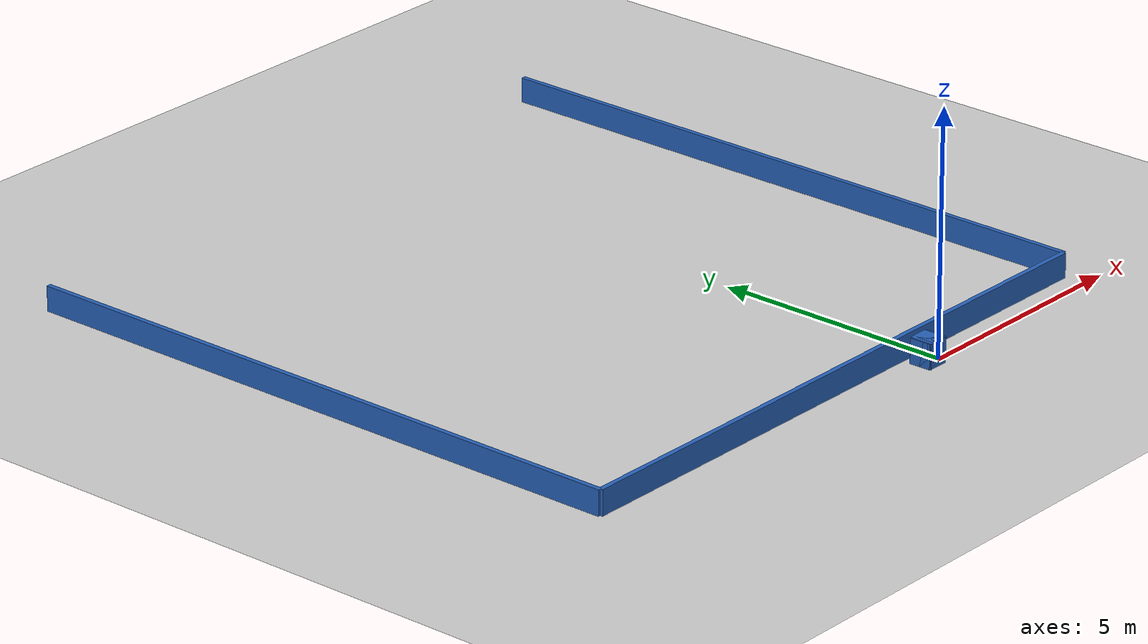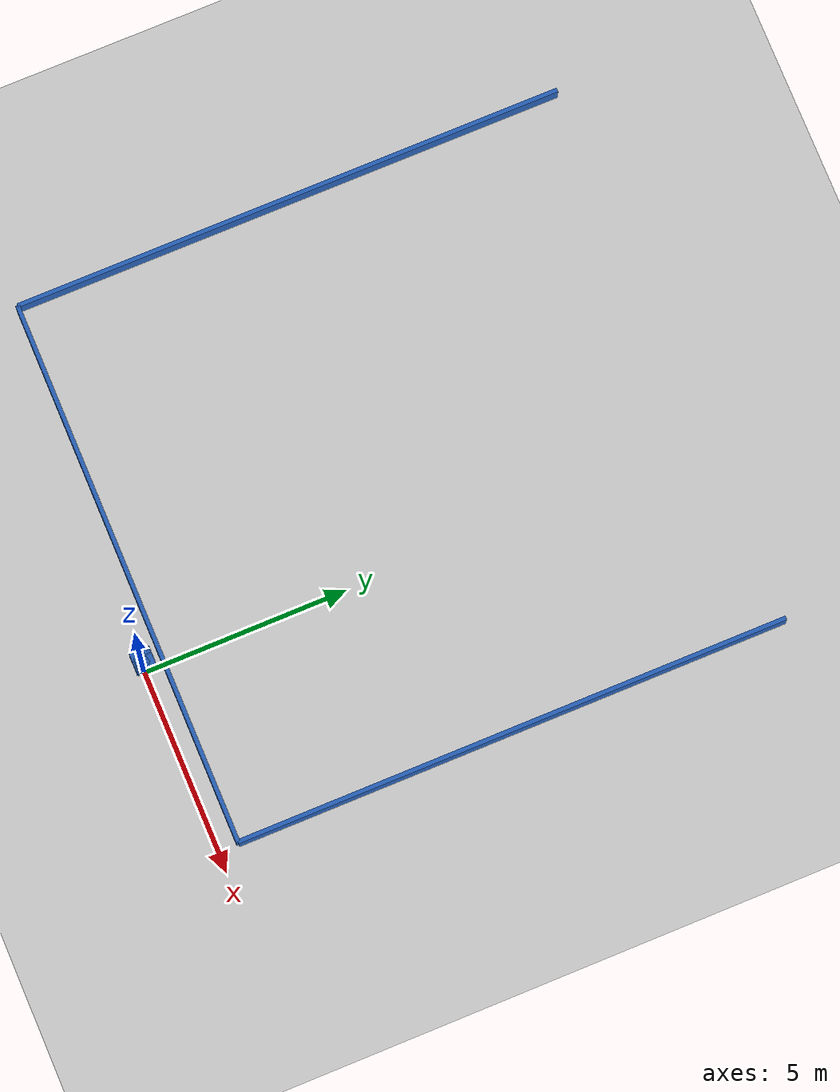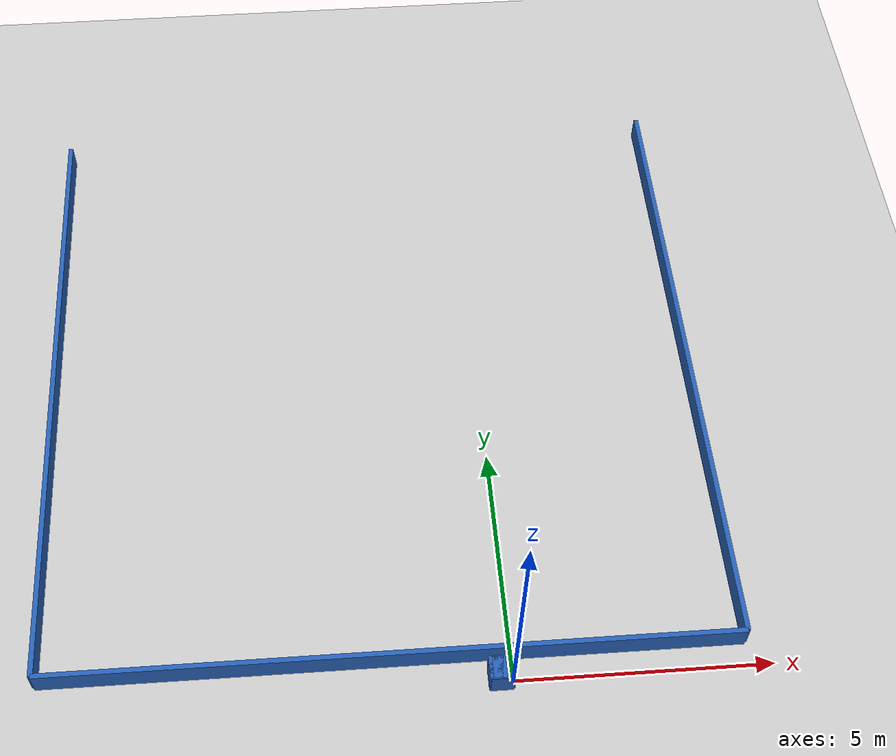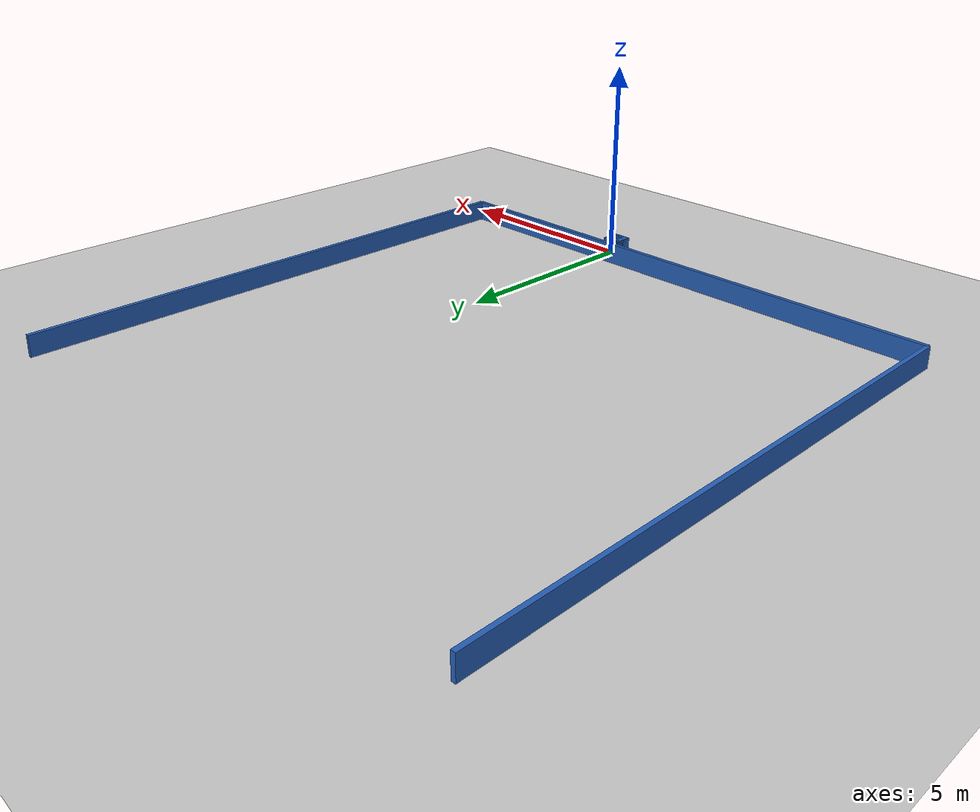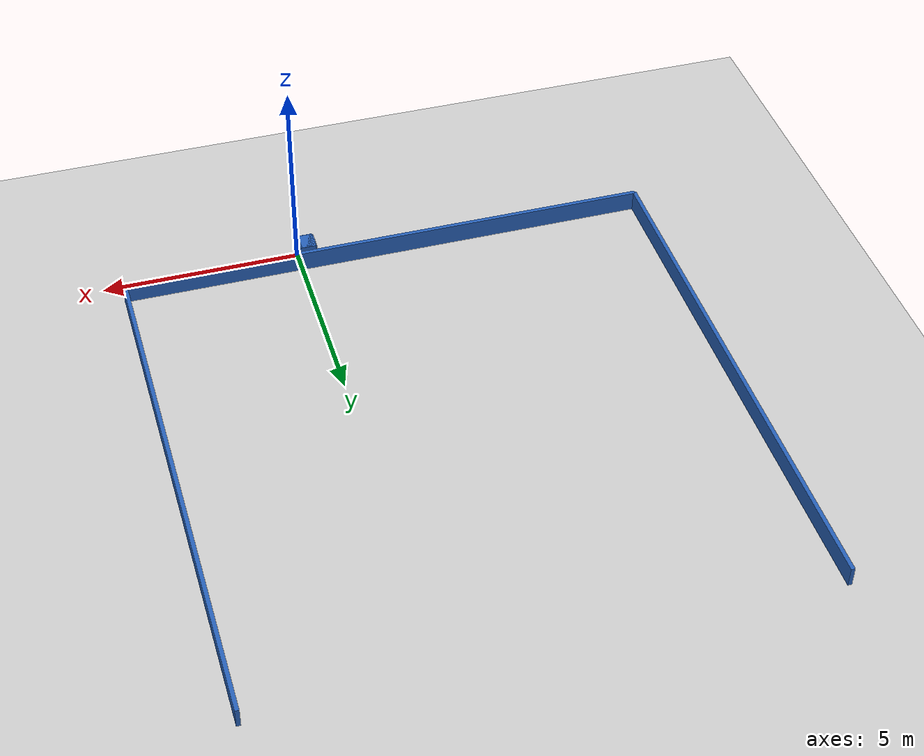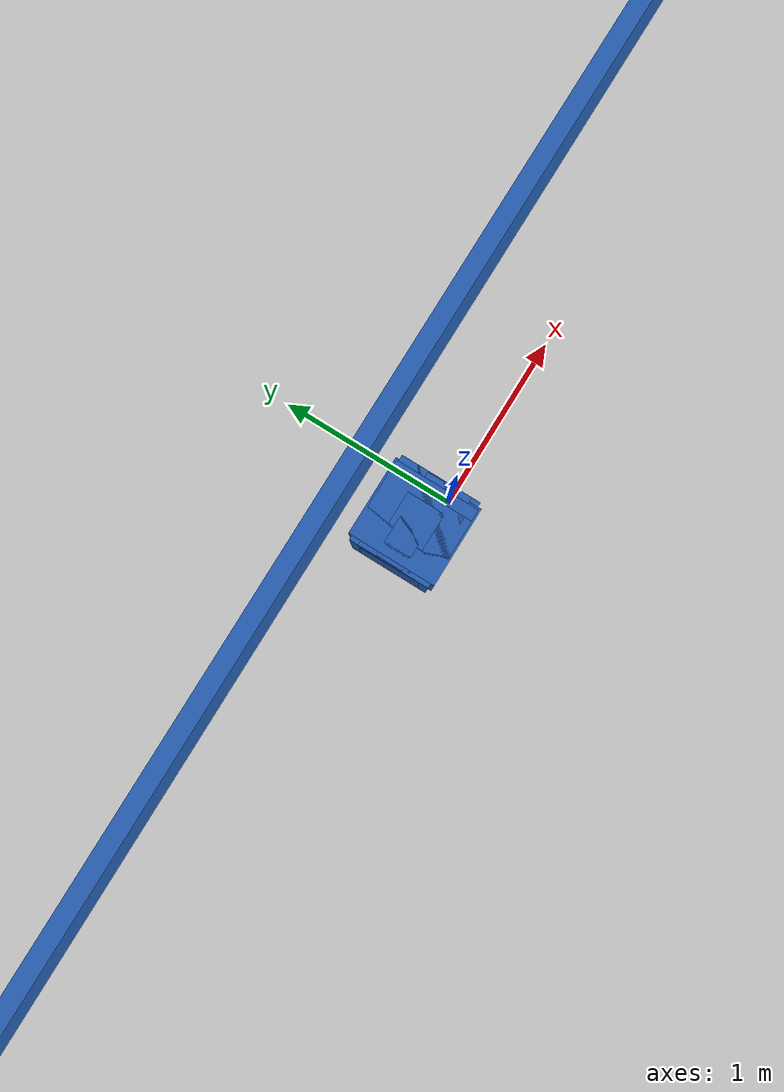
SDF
<?xml version="1.0" ?>
    <sdf version="1.5">
      <world name="default">
        <!-- A global light source -->
        <include>
          <uri>model://sun</uri>
        </include>
        <!-- A ground plane -->
        <include>
          <uri>model://ground_plane</uri>
        </include>

    <model name='libopen_space_final_T2B_51_1'>
      <static>1</static>
      <pose frame=''>-0.225000 0.075000 0.000000 0.000000 0.000000 0.000000</pose>
      <link name='link'>
        <inertial>
          <mass>1</mass>
          <inertia>
            <ixx>0.145833</ixx>
            <ixy>0</ixy>
            <ixz>0</ixz>
            <iyy>0.145833</iyy>
            <iyz>0</iyz>
            <izz>0.125</izz>
          </inertia>
        </inertial>
        <collision name='collision'>
          <geometry>
            <box>
              <size>0.49 0.35 1</size>
            </box>
          </geometry>
          <max_contacts>10</max_contacts>
          <surface>
            <contact>
              <ode/>
            </contact>
            <bounce/>
            <friction>
              <torsional>
                <ode/>
              </torsional>
              <ode/>
            </friction>
          </surface>
        </collision>
        <visual name='visual'>
          <geometry>
            <box>
              <size>0.49 0.35 1</size>
            </box>
          </geometry>
	    <material>
              <ambient>0.152000 0.379000 0.720000 1</ambient>
	      <diffuse>0.152000 0.379000 0.720000 1</diffuse>
          </material>
          <material>
            <script>
              <name>Gazebo/Grey</name>
              <uri>file://media/materials/scripts/gazebo.material</uri>
            </script>
          </material>
        </visual>
        <self_collide>0</self_collide>
        <kinematic>0</kinematic>
        <gravity>1</gravity>
      </link>
      <plugin name='libopen_space_final_T2B_51_1' filename='libopen_space_final_T2B_51_1.so'/>
    </model>

    <model name='libopen_space_final_T2B_139_84'>
      <static>1</static>
      <pose frame=''>-0.225000 0.075000 0.000000 0.000000 0.000000 0.000000</pose>
      <link name='link'>
        <inertial>
          <mass>1</mass>
          <inertia>
            <ixx>0.145833</ixx>
            <ixy>0</ixy>
            <ixz>0</ixz>
            <iyy>0.145833</iyy>
            <iyz>0</iyz>
            <izz>0.125</izz>
          </inertia>
        </inertial>
        <collision name='collision'>
          <geometry>
            <box>
              <size>0.16 0.44 1</size>
            </box>
          </geometry>
          <max_contacts>10</max_contacts>
          <surface>
            <contact>
              <ode/>
            </contact>
            <bounce/>
            <friction>
              <torsional>
                <ode/>
              </torsional>
              <ode/>
            </friction>
          </surface>
        </collision>
        <visual name='visual'>
          <geometry>
            <box>
              <size>0.16 0.44 1</size>
            </box>
          </geometry>
	    <material>
              <ambient>0.152000 0.379000 0.720000 1</ambient>
	      <diffuse>0.152000 0.379000 0.720000 1</diffuse>
          </material>
          <material>
            <script>
              <name>Gazebo/Grey</name>
              <uri>file://media/materials/scripts/gazebo.material</uri>
            </script>
          </material>
        </visual>
        <self_collide>0</self_collide>
        <kinematic>0</kinematic>
        <gravity>1</gravity>
      </link>
      <plugin name='libopen_space_final_T2B_139_84' filename='libopen_space_final_T2B_139_84.so'/>
    </model>

    <model name='libopen_space_final_T2B_73_9'>
      <static>1</static>
      <pose frame=''>-0.225000 0.075000 0.000000 0.000000 0.000000 0.000000</pose>
      <link name='link'>
        <inertial>
          <mass>1</mass>
          <inertia>
            <ixx>0.145833</ixx>
            <ixy>0</ixy>
            <ixz>0</ixz>
            <iyy>0.145833</iyy>
            <iyz>0</iyz>
            <izz>0.125</izz>
          </inertia>
        </inertial>
        <collision name='collision'>
          <geometry>
            <box>
              <size>0.21 0.21 1</size>
            </box>
          </geometry>
          <max_contacts>10</max_contacts>
          <surface>
            <contact>
              <ode/>
            </contact>
            <bounce/>
            <friction>
              <torsional>
                <ode/>
              </torsional>
              <ode/>
            </friction>
          </surface>
        </collision>
        <visual name='visual'>
          <geometry>
            <box>
              <size>0.21 0.21 1</size>
            </box>
          </geometry>
	    <material>
              <ambient>0.152000 0.379000 0.720000 1</ambient>
	      <diffuse>0.152000 0.379000 0.720000 1</diffuse>
          </material>
          <material>
            <script>
              <name>Gazebo/Grey</name>
              <uri>file://media/materials/scripts/gazebo.material</uri>
            </script>
          </material>
        </visual>
        <self_collide>0</self_collide>
        <kinematic>0</kinematic>
        <gravity>1</gravity>
      </link>
      <plugin name='libopen_space_final_T2B_73_9' filename='libopen_space_final_T2B_73_9.so'/>
    </model>

    <model name='libopen_space_final_T2B_120_90'>
      <static>1</static>
      <pose frame=''>-0.225000 0.075000 0.000000 0.000000 0.000000 0.000000</pose>
      <link name='link'>
        <inertial>
          <mass>1</mass>
          <inertia>
            <ixx>0.145833</ixx>
            <ixy>0</ixy>
            <ixz>0</ixz>
            <iyy>0.145833</iyy>
            <iyz>0</iyz>
            <izz>0.125</izz>
          </inertia>
        </inertial>
        <collision name='collision'>
          <geometry>
            <box>
              <size>0.19 0.19 1</size>
            </box>
          </geometry>
          <max_contacts>10</max_contacts>
          <surface>
            <contact>
              <ode/>
            </contact>
            <bounce/>
            <friction>
              <torsional>
                <ode/>
              </torsional>
              <ode/>
            </friction>
          </surface>
        </collision>
        <visual name='visual'>
          <geometry>
            <box>
              <size>0.19 0.19 1</size>
            </box>
          </geometry>
	    <material>
              <ambient>0.152000 0.379000 0.720000 1</ambient>
	      <diffuse>0.152000 0.379000 0.720000 1</diffuse>
          </material>
          <material>
            <script>
              <name>Gazebo/Grey</name>
              <uri>file://media/materials/scripts/gazebo.material</uri>
            </script>
          </material>
        </visual>
        <self_collide>0</self_collide>
        <kinematic>0</kinematic>
        <gravity>1</gravity>
      </link>
      <plugin name='libopen_space_final_T2B_120_90' filename='libopen_space_final_T2B_120_90.so'/>
    </model>

    <model name='libopen_space_final_T2B_111_12'>
      <static>1</static>
      <pose frame=''>-0.225000 0.075000 0.000000 0.000000 0.000000 0.000000</pose>
      <link name='link'>
        <inertial>
          <mass>1</mass>
          <inertia>
            <ixx>0.145833</ixx>
            <ixy>0</ixy>
            <ixz>0</ixz>
            <iyy>0.145833</iyy>
            <iyz>0</iyz>
            <izz>0.125</izz>
          </inertia>
        </inertial>
        <collision name='collision'>
          <geometry>
            <box>
              <size>0.42 0.47 1</size>
            </box>
          </geometry>
          <max_contacts>10</max_contacts>
          <surface>
            <contact>
              <ode/>
            </contact>
            <bounce/>
            <friction>
              <torsional>
                <ode/>
              </torsional>
              <ode/>
            </friction>
          </surface>
        </collision>
        <visual name='visual'>
          <geometry>
            <box>
              <size>0.42 0.47 1</size>
            </box>
          </geometry>
	    <material>
              <ambient>0.152000 0.379000 0.720000 1</ambient>
	      <diffuse>0.152000 0.379000 0.720000 1</diffuse>
          </material>
          <material>
            <script>
              <name>Gazebo/Grey</name>
              <uri>file://media/materials/scripts/gazebo.material</uri>
            </script>
          </material>
        </visual>
        <self_collide>0</self_collide>
        <kinematic>0</kinematic>
        <gravity>1</gravity>
      </link>
      <plugin name='libopen_space_final_T2B_111_12' filename='libopen_space_final_T2B_111_12.so'/>
    </model>

    <model name='libopen_space_final_T2B_126_78'>
      <static>1</static>
      <pose frame=''>-0.225000 0.075000 0.000000 0.000000 0.000000 0.000000</pose>
      <link name='link'>
        <inertial>
          <mass>1</mass>
          <inertia>
            <ixx>0.145833</ixx>
            <ixy>0</ixy>
            <ixz>0</ixz>
            <iyy>0.145833</iyy>
            <iyz>0</iyz>
            <izz>0.125</izz>
          </inertia>
        </inertial>
        <collision name='collision'>
          <geometry>
            <box>
              <size>0.49 0.45 1</size>
            </box>
          </geometry>
          <max_contacts>10</max_contacts>
          <surface>
            <contact>
              <ode/>
            </contact>
            <bounce/>
            <friction>
              <torsional>
                <ode/>
              </torsional>
              <ode/>
            </friction>
          </surface>
        </collision>
        <visual name='visual'>
          <geometry>
            <box>
              <size>0.49 0.45 1</size>
            </box>
          </geometry>
	    <material>
              <ambient>0.152000 0.379000 0.720000 1</ambient>
	      <diffuse>0.152000 0.379000 0.720000 1</diffuse>
          </material>
          <material>
            <script>
              <name>Gazebo/Grey</name>
              <uri>file://media/materials/scripts/gazebo.material</uri>
            </script>
          </material>
        </visual>
        <self_collide>0</self_collide>
        <kinematic>0</kinematic>
        <gravity>1</gravity>
      </link>
      <plugin name='libopen_space_final_T2B_126_78' filename='libopen_space_final_T2B_126_78.so'/>
    </model>

    <model name='libopen_space_final_T2B_105_8'>
      <static>1</static>
      <pose frame=''>-0.225000 0.075000 0.000000 0.000000 0.000000 0.000000</pose>
      <link name='link'>
        <inertial>
          <mass>1</mass>
          <inertia>
            <ixx>0.145833</ixx>
            <ixy>0</ixy>
            <ixz>0</ixz>
            <iyy>0.145833</iyy>
            <iyz>0</iyz>
            <izz>0.125</izz>
          </inertia>
        </inertial>
        <collision name='collision'>
          <geometry>
            <box>
              <size>0.48 0.15 1</size>
            </box>
          </geometry>
          <max_contacts>10</max_contacts>
          <surface>
            <contact>
              <ode/>
            </contact>
            <bounce/>
            <friction>
              <torsional>
                <ode/>
              </torsional>
              <ode/>
            </friction>
          </surface>
        </collision>
        <visual name='visual'>
          <geometry>
            <box>
              <size>0.48 0.15 1</size>
            </box>
          </geometry>
	    <material>
              <ambient>0.152000 0.379000 0.720000 1</ambient>
	      <diffuse>0.152000 0.379000 0.720000 1</diffuse>
          </material>
          <material>
            <script>
              <name>Gazebo/Grey</name>
              <uri>file://media/materials/scripts/gazebo.material</uri>
            </script>
          </material>
        </visual>
        <self_collide>0</self_collide>
        <kinematic>0</kinematic>
        <gravity>1</gravity>
      </link>
      <plugin name='libopen_space_final_T2B_105_8' filename='libopen_space_final_T2B_105_8.so'/>
    </model>

    <model name='libopen_space_final_T2B_85_62'>
      <static>1</static>
      <pose frame=''>-0.225000 0.075000 0.000000 0.000000 0.000000 0.000000</pose>
      <link name='link'>
        <inertial>
          <mass>1</mass>
          <inertia>
            <ixx>0.145833</ixx>
            <ixy>0</ixy>
            <ixz>0</ixz>
            <iyy>0.145833</iyy>
            <iyz>0</iyz>
            <izz>0.125</izz>
          </inertia>
        </inertial>
        <collision name='collision'>
          <geometry>
            <box>
              <size>0.46 0.22 1</size>
            </box>
          </geometry>
          <max_contacts>10</max_contacts>
          <surface>
            <contact>
              <ode/>
            </contact>
            <bounce/>
            <friction>
              <torsional>
                <ode/>
              </torsional>
              <ode/>
            </friction>
          </surface>
        </collision>
        <visual name='visual'>
          <geometry>
            <box>
              <size>0.46 0.22 1</size>
            </box>
          </geometry>
	    <material>
              <ambient>0.152000 0.379000 0.720000 1</ambient>
	      <diffuse>0.152000 0.379000 0.720000 1</diffuse>
          </material>
          <material>
            <script>
              <name>Gazebo/Grey</name>
              <uri>file://media/materials/scripts/gazebo.material</uri>
            </script>
          </material>
        </visual>
        <self_collide>0</self_collide>
        <kinematic>0</kinematic>
        <gravity>1</gravity>
      </link>
      <plugin name='libopen_space_final_T2B_85_62' filename='libopen_space_final_T2B_85_62.so'/>
    </model>

    <model name='libopen_space_final_T2B_148_40'>
      <static>1</static>
      <pose frame=''>-0.225000 0.075000 0.000000 0.000000 0.000000 0.000000</pose>
      <link name='link'>
        <inertial>
          <mass>1</mass>
          <inertia>
            <ixx>0.145833</ixx>
            <ixy>0</ixy>
            <ixz>0</ixz>
            <iyy>0.145833</iyy>
            <iyz>0</iyz>
            <izz>0.125</izz>
          </inertia>
        </inertial>
        <collision name='collision'>
          <geometry>
            <box>
              <size>0.29 0.47 1</size>
            </box>
          </geometry>
          <max_contacts>10</max_contacts>
          <surface>
            <contact>
              <ode/>
            </contact>
            <bounce/>
            <friction>
              <torsional>
                <ode/>
              </torsional>
              <ode/>
            </friction>
          </surface>
        </collision>
        <visual name='visual'>
          <geometry>
            <box>
              <size>0.29 0.47 1</size>
            </box>
          </geometry>
	    <material>
              <ambient>0.152000 0.379000 0.720000 1</ambient>
	      <diffuse>0.152000 0.379000 0.720000 1</diffuse>
          </material>
          <material>
            <script>
              <name>Gazebo/Grey</name>
              <uri>file://media/materials/scripts/gazebo.material</uri>
            </script>
          </material>
        </visual>
        <self_collide>0</self_collide>
        <kinematic>0</kinematic>
        <gravity>1</gravity>
      </link>
      <plugin name='libopen_space_final_T2B_148_40' filename='libopen_space_final_T2B_148_40.so'/>
    </model>

    <model name='libopen_space_final_T2B_134_32'>
      <static>1</static>
      <pose frame=''>-0.225000 0.075000 0.000000 0.000000 0.000000 0.000000</pose>
      <link name='link'>
        <inertial>
          <mass>1</mass>
          <inertia>
            <ixx>0.145833</ixx>
            <ixy>0</ixy>
            <ixz>0</ixz>
            <iyy>0.145833</iyy>
            <iyz>0</iyz>
            <izz>0.125</izz>
          </inertia>
        </inertial>
        <collision name='collision'>
          <geometry>
            <box>
              <size>0.35 0.42 1</size>
            </box>
          </geometry>
          <max_contacts>10</max_contacts>
          <surface>
            <contact>
              <ode/>
            </contact>
            <bounce/>
            <friction>
              <torsional>
                <ode/>
              </torsional>
              <ode/>
            </friction>
          </surface>
        </collision>
        <visual name='visual'>
          <geometry>
            <box>
              <size>0.35 0.42 1</size>
            </box>
          </geometry>
	    <material>
              <ambient>0.152000 0.379000 0.720000 1</ambient>
	      <diffuse>0.152000 0.379000 0.720000 1</diffuse>
          </material>
          <material>
            <script>
              <name>Gazebo/Grey</name>
              <uri>file://media/materials/scripts/gazebo.material</uri>
            </script>
          </material>
        </visual>
        <self_collide>0</self_collide>
        <kinematic>0</kinematic>
        <gravity>1</gravity>
      </link>
      <plugin name='libopen_space_final_T2B_134_32' filename='libopen_space_final_T2B_134_32.so'/>
    </model>

    <model name='libopen_space_final_T2B_90_7'>
      <static>1</static>
      <pose frame=''>-0.225000 0.075000 0.000000 0.000000 0.000000 0.000000</pose>
      <link name='link'>
        <inertial>
          <mass>1</mass>
          <inertia>
            <ixx>0.145833</ixx>
            <ixy>0</ixy>
            <ixz>0</ixz>
            <iyy>0.145833</iyy>
            <iyz>0</iyz>
            <izz>0.125</izz>
          </inertia>
        </inertial>
        <collision name='collision'>
          <geometry>
            <box>
              <size>0.44 0.49 1</size>
            </box>
          </geometry>
          <max_contacts>10</max_contacts>
          <surface>
            <contact>
              <ode/>
            </contact>
            <bounce/>
            <friction>
              <torsional>
                <ode/>
              </torsional>
              <ode/>
            </friction>
          </surface>
        </collision>
        <visual name='visual'>
          <geometry>
            <box>
              <size>0.44 0.49 1</size>
            </box>
          </geometry>
	    <material>
              <ambient>0.152000 0.379000 0.720000 1</ambient>
	      <diffuse>0.152000 0.379000 0.720000 1</diffuse>
          </material>
          <material>
            <script>
              <name>Gazebo/Grey</name>
              <uri>file://media/materials/scripts/gazebo.material</uri>
            </script>
          </material>
        </visual>
        <self_collide>0</self_collide>
        <kinematic>0</kinematic>
        <gravity>1</gravity>
      </link>
      <plugin name='libopen_space_final_T2B_90_7' filename='libopen_space_final_T2B_90_7.so'/>
    </model>

    <model name='libopen_space_final_T2B_112_28'>
      <static>1</static>
      <pose frame=''>-0.225000 0.075000 0.000000 0.000000 0.000000 0.000000</pose>
      <link name='link'>
        <inertial>
          <mass>1</mass>
          <inertia>
            <ixx>0.145833</ixx>
            <ixy>0</ixy>
            <ixz>0</ixz>
            <iyy>0.145833</iyy>
            <iyz>0</iyz>
            <izz>0.125</izz>
          </inertia>
        </inertial>
        <collision name='collision'>
          <geometry>
            <box>
              <size>0.27 0.39 1</size>
            </box>
          </geometry>
          <max_contacts>10</max_contacts>
          <surface>
            <contact>
              <ode/>
            </contact>
            <bounce/>
            <friction>
              <torsional>
                <ode/>
              </torsional>
              <ode/>
            </friction>
          </surface>
        </collision>
        <visual name='visual'>
          <geometry>
            <box>
              <size>0.27 0.39 1</size>
            </box>
          </geometry>
	    <material>
              <ambient>0.152000 0.379000 0.720000 1</ambient>
	      <diffuse>0.152000 0.379000 0.720000 1</diffuse>
          </material>
          <material>
            <script>
              <name>Gazebo/Grey</name>
              <uri>file://media/materials/scripts/gazebo.material</uri>
            </script>
          </material>
        </visual>
        <self_collide>0</self_collide>
        <kinematic>0</kinematic>
        <gravity>1</gravity>
      </link>
      <plugin name='libopen_space_final_T2B_112_28' filename='libopen_space_final_T2B_112_28.so'/>
    </model>

        <model name='bottom_wall'>
          <static>1</static>
          <pose frame=''>-2.25 0.5 0.000000 0.000000 0.000000 1.57079632</pose>
          <link name='link'>
            <inertial>
            <mass>1</mass>
            <inertia>
              <ixx>0.145833</ixx>
              <ixy>0</ixy>
              <ixz>0</ixz>
              <iyy>0.145833</iyy>
              <iyz>0</iyz>
              <izz>0.125</izz>
            </inertia>
            </inertial>
            <collision name='collision'>
            <geometry>
              <box>
              <size>0.1 13.5 1</size>
              </box>
            </geometry>
            <max_contacts>10</max_contacts>
            <surface>
              <contact>
              <ode/>
              </contact>
              <bounce/>
              <friction>
              <torsional>
                <ode/>
              </torsional>
              <ode/>
              </friction>
            </surface>
            </collision>
            <visual name='visual'>
            <geometry>
              <box>
              <size>0.1 13.5 1</size>
              </box>
            </geometry>
            <material>
              <ambient>0.152000 0.379000 0.720000 1</ambient>
            <diffuse>0.152000 0.379000 0.720000 1</diffuse>
            </material>
            <material>
              <script>
              <name>Gazebo/Grey</name>
              <uri>file://media/materials/scripts/gazebo.material</uri>
              </script>
            </material>
            </visual>
            <self_collide>0</self_collide>
            <kinematic>0</kinematic>
            <gravity>1</gravity>
          </link>
        </model>

        <model name='left_wall'>
          <static>1</static>
          <pose frame=''>-9 7.25 0.000000 0.000000 0.000000 0.000000</pose>
          <link name='link'>
            <inertial>
            <mass>1</mass>
            <inertia>
              <ixx>0.145833</ixx>
              <ixy>0</ixy>
              <ixz>0</ixz>
              <iyy>0.145833</iyy>
              <iyz>0</iyz>
              <izz>0.125</izz>
            </inertia>
            </inertial>
            <collision name='collision'>
            <geometry>
              <box>
              <size>0.1 13.5 1</size>
              </box>
            </geometry>
            <max_contacts>10</max_contacts>
            <surface>
              <contact>
              <ode/>
              </contact>
              <bounce/>
              <friction>
              <torsional>
                <ode/>
              </torsional>
              <ode/>
              </friction>
            </surface>
            </collision>
            <visual name='visual'>
            <geometry>
              <box>
              <size>0.1 13.5 1</size>
              </box>
            </geometry>
            <material>
              <ambient>0.152000 0.379000 0.720000 1</ambient>
            <diffuse>0.152000 0.379000 0.720000 1</diffuse>
            </material>
            <material>
              <script>
              <name>Gazebo/Grey</name>
              <uri>file://media/materials/scripts/gazebo.material</uri>
              </script>
            </material>
            </visual>
            <self_collide>0</self_collide>
            <kinematic>0</kinematic>
            <gravity>1</gravity>
          </link>
        </model>

        <model name='right_wall'>
          <static>1</static>
          <pose frame=''>4.5 7.25 0.000000 0.000000 0.000000 0.000000</pose>
          <link name='link'>
            <inertial>
            <mass>1</mass>
            <inertia>
              <ixx>0.145833</ixx>
              <ixy>0</ixy>
              <ixz>0</ixz>
              <iyy>0.145833</iyy>
              <iyz>0</iyz>
              <izz>0.125</izz>
            </inertia>
            </inertial>
            <collision name='collision'>
            <geometry>
              <box>
              <size>0.1 13.5 1</size>
              </box>
            </geometry>
            <max_contacts>10</max_contacts>
            <surface>
              <contact>
              <ode/>
              </contact>
              <bounce/>
              <friction>
              <torsional>
                <ode/>
              </torsional>
              <ode/>
              </friction>
            </surface>
            </collision>
            <visual name='visual'>
            <geometry>
              <box>
              <size>0.1 13.5 1</size>
              </box>
            </geometry>
            <material>
              <ambient>0.152000 0.379000 0.720000 1</ambient>
            <diffuse>0.152000 0.379000 0.720000 1</diffuse>
            </material>
            <material>
              <script>
              <name>Gazebo/Grey</name>
              <uri>file://media/materials/scripts/gazebo.material</uri>
              </script>
            </material>
            </visual>
            <self_collide>0</self_collide>
            <kinematic>0</kinematic>
            <gravity>1</gravity>
          </link>
        </model>

      </world>
    </sdf>"
